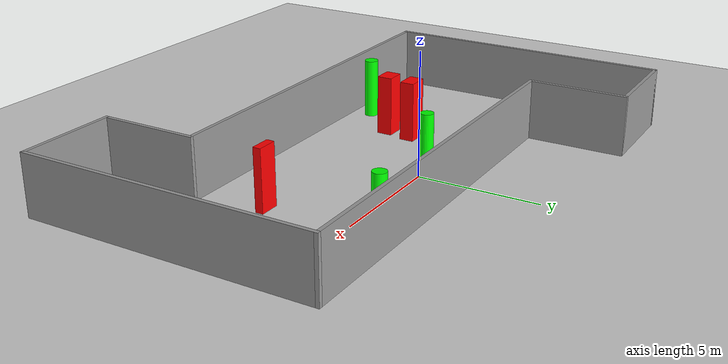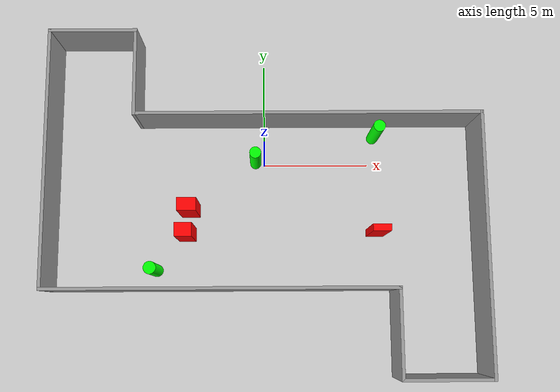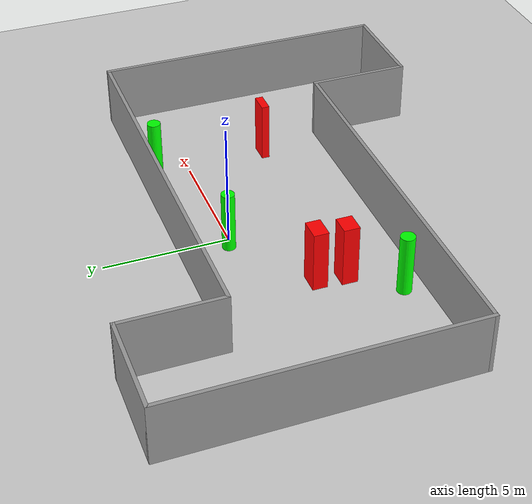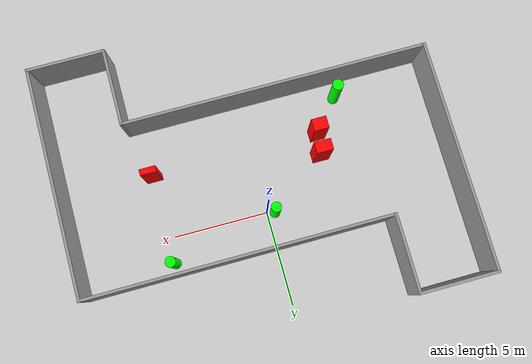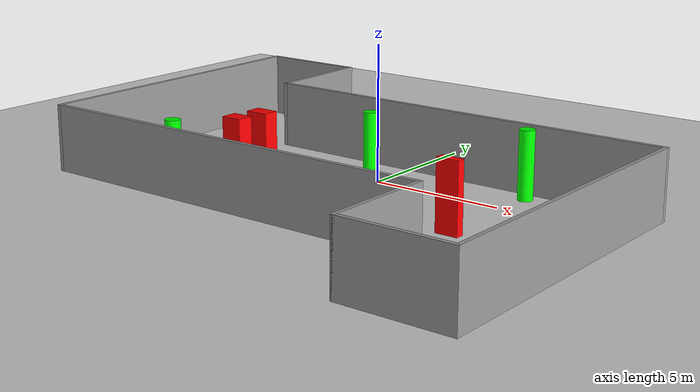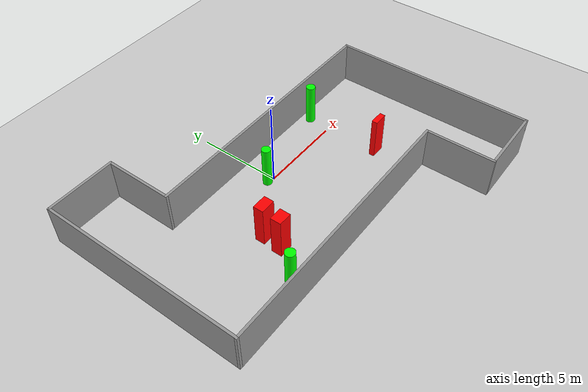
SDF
<sdf version="1.7">
 <world name="default">
  <light name="sun" type="directional">
   <pose>0 0 10 0 -0 0</pose>
   <diffuse>0.8 0.8 0.8 1</diffuse>
   <specular>0.2 0.2 0.2 1</specular>
   <attenuation>
    <range>1000</range>
    <constant>0.9</constant>
    <linear>0.01</linear>
    <quadratic>0.001</quadratic>
   </attenuation>
   <direction>-0.5 0.1 -0.9</direction>
   <spot><inner_angle>0</inner_angle><outer_angle>0</outer_angle><falloff>0</falloff></spot>
  </light>
  <model name="ground_plane">
   <static>1</static>
   <link name="link">
    <collision name="collision">
     <geometry><plane><normal>0 0 1</normal><size>100 100</size></plane></geometry>
     <surface>
      <contact><collide_bitmask>65535</collide_bitmask></contact>
      <friction><ode><mu>100</mu><mu2>50</mu2></ode></friction>
     </surface>
    </collision>
    <visual name="visual">
     <cast_shadows>0</cast_shadows>
     <geometry><plane><normal>0 0 1</normal><size>100 100</size></plane></geometry>
     <material>
      <script><uri>file://media/materials/scripts/gazebo.material</uri><name>Gazebo/Grey</name></script>
     </material>
    </visual>
   </link>
  </model>
  <gravity>0 0 -9.8</gravity>
  <magnetic_field>6e-06 2.3e-05 -4.2e-05</magnetic_field>
  <atmosphere type="adiabatic"/>
  <physics type="ode">
   <max_step_size>0.001</max_step_size>
   <real_time_factor>1</real_time_factor>
   <real_time_update_rate>1000</real_time_update_rate>
  </physics>
  <scene><ambient>0.4 0.4 0.4 1</ambient><background>0.7 0.7 0.7 1</background><shadows>1</shadows></scene>
  <spherical_coordinates>
   <surface_model>EARTH_WGS84</surface_model>
   <latitude_deg>0</latitude_deg>
   <longitude_deg>0</longitude_deg>
   <elevation>0</elevation>
   <heading_deg>0</heading_deg>
  </spherical_coordinates>
  <model name="my_base_walls">
   <link name="Wall_13">
    <collision name="Wall_13_Collision">
     <geometry><box><size>12.15 0.15 2.5</size></box></geometry>
     <pose>0 0 1.25 0 -0 0</pose>
    </collision>
    <visual name="Wall_13_Visual">
     <pose>0 0 1.25 0 -0 0</pose>
     <geometry><box><size>12.15 0.15 2.5</size></box></geometry>
     <material>
      <script><uri>file://media/materials/scripts/gazebo.material</uri><name>Gazebo/Grey</name></script>
      <ambient>1 1 1 1</ambient>
     </material>
     <meta><layer>0</layer></meta>
    </visual>
    <pose>10 -2 0 0 -0 1.5708</pose>
   </link>
   <link name="Wall_15">
    <collision name="Wall_15_Collision">
     <geometry><box><size>16.15 0.15 2.5</size></box></geometry>
     <pose>0 0 1.25 0 -0 0</pose>
    </collision>
    <visual name="Wall_15_Visual">
     <pose>0 0 1.25 0 -0 0</pose>
     <geometry><box><size>16.15 0.15 2.5</size></box></geometry>
     <material>
      <script><uri>file://media/materials/scripts/gazebo.material</uri><name>Gazebo/Grey</name></script>
      <ambient>1 1 1 1</ambient>
     </material>
     <meta><layer>0</layer></meta>
    </visual>
    <pose>2 4 0 0 -0 3.14159</pose>
   </link>
   <link name="Wall_17">
    <collision name="Wall_17_Collision">
     <geometry><box><size>4.15 0.15 2.5</size></box></geometry>
     <pose>0 0 1.25 0 -0 0</pose>
    </collision>
    <visual name="Wall_17_Visual">
     <pose>0 0 1.25 0 -0 0</pose>
     <geometry><box><size>4.15 0.15 2.5</size></box></geometry>
     <material>
      <script><uri>file://media/materials/scripts/gazebo.material</uri><name>Gazebo/Grey</name></script>
      <ambient>1 1 1 1</ambient>
     </material>
     <meta><layer>0</layer></meta>
    </visual>
    <pose>6 -6 0 0 -0 -1.5708</pose>
   </link>
   <link name="Wall_19">
    <collision name="Wall_19_Collision">
     <geometry><box><size>12.15 0.15 2.5</size></box></geometry>
     <pose>0 0 1.25 0 -0 0</pose>
    </collision>
    <visual name="Wall_19_Visual">
     <pose>0 0 1.25 0 -0 0</pose>
     <geometry><box><size>12.15 0.15 2.5</size></box></geometry>
     <material>
      <script><uri>file://media/materials/scripts/gazebo.material</uri><name>Gazebo/Grey</name></script>
      <ambient>1 1 1 1</ambient>
     </material>
     <meta><layer>0</layer></meta>
    </visual>
    <pose>-10 2 0 0 -0 1.5708</pose>
   </link>
   <link name="Wall_21">
    <collision name="Wall_21_Collision">
     <geometry><box><size>4.15 0.15 2.5</size></box></geometry>
     <pose>0 0 1.25 0 -0 0</pose>
    </collision>
    <visual name="Wall_21_Visual">
     <pose>0 0 1.25 0 -0 0</pose>
     <geometry><box><size>4.15 0.15 2.5</size></box></geometry>
     <material>
      <script><uri>file://media/materials/scripts/gazebo.material</uri><name>Gazebo/Grey</name></script>
      <ambient>1 1 1 1</ambient>
     </material>
     <meta><layer>0</layer></meta>
    </visual>
    <pose>-8 8 0 0 -0 0</pose>
   </link>
   <link name="Wall_23">
    <collision name="Wall_23_Collision">
     <geometry><box><size>4.15 0.15 2.5</size></box></geometry>
     <pose>0 0 1.25 0 -0 0</pose>
    </collision>
    <visual name="Wall_23_Visual">
     <pose>0 0 1.25 0 -0 0</pose>
     <geometry><box><size>4.15 0.15 2.5</size></box></geometry>
     <material>
      <script><uri>file://media/materials/scripts/gazebo.material</uri><name>Gazebo/Grey</name></script>
      <ambient>1 1 1 1</ambient>
     </material>
     <meta><layer>0</layer></meta>
    </visual>
    <pose>-6 6 0 0 -0 -1.5708</pose>
   </link>
   <link name="Wall_25">
    <collision name="Wall_25_Collision">
     <geometry><box><size>4.15 0.15 2.5</size></box></geometry>
     <pose>0 0 1.25 0 -0 0</pose>
    </collision>
    <visual name="Wall_25_Visual">
     <pose>0 0 1.25 0 -0 0</pose>
     <geometry><box><size>4.15 0.15 2.5</size></box></geometry>
     <material>
      <script><uri>file://media/materials/scripts/gazebo.material</uri><name>Gazebo/Grey</name></script>
      <ambient>1 1 1 1</ambient>
     </material>
     <meta><layer>0</layer></meta>
    </visual>
    <pose>8 -8 0 0 -0 0</pose>
   </link>
   <link name="Wall_9">
    <collision name="Wall_9_Collision">
     <geometry><box><size>16.15 0.15 2.5</size></box></geometry>
     <pose>0 0 1.25 0 -0 0</pose>
    </collision>
    <visual name="Wall_9_Visual">
     <pose>0 0 1.25 0 -0 0</pose>
     <geometry><box><size>16.15 0.15 2.5</size></box></geometry>
     <material>
      <script><uri>file://media/materials/scripts/gazebo.material</uri><name>Gazebo/Grey</name></script>
      <ambient>1 1 1 1</ambient>
     </material>
     <meta><layer>0</layer></meta>
    </visual>
    <pose>-2 -4 0 0 -0 3.14159</pose>
   </link>
   <static>1</static>
   <pose>-0 -2 0 0 -0 0</pose>
  </model>
  <model name="cylinder1">
   <static>1</static>
   <link name="link">
    <inertial>
     <mass>1</mass>
     <inertia><ixx>0.5</ixx><ixy>0</ixy><ixz>0</ixz><iyy>0.5</iyy><iyz>0</iyz><izz>1</izz></inertia>
    </inertial>
    <collision name="collision">
     <geometry><cylinder><radius>0.2651198157460931</radius><length>2.5</length></cylinder></geometry>
    </collision>
    <visual name="visual">
     <geometry><cylinder><radius>0.2651198157460931</radius><length>2.5</length></cylinder></geometry>
     <material>
      <ambient>0 1 0 1</ambient>
      <diffuse>0 1 0 1</diffuse>
      <specular>0.1 0.1 0.1 1</specular>
      <emissive>0 0 0 0</emissive>
     </material>
    </visual>
   </link>
   <pose>-0.41307951575683255 0.12199379041248104 1.25 0 0 0</pose>
  </model>
  <model name="cylinder2">
   <static>1</static>
   <link name="link">
    <inertial>
     <mass>1</mass>
     <inertia><ixx>0.5</ixx><ixy>0</ixy><ixz>0</ixz><iyy>0.5</iyy><iyz>0</iyz><izz>1</izz></inertia>
    </inertial>
    <collision name="collision">
     <geometry><cylinder><radius>0.2869185096919095</radius><length>2.5</length></cylinder></geometry>
    </collision>
    <visual name="visual">
     <geometry><cylinder><radius>0.2869185096919095</radius><length>2.5</length></cylinder></geometry>
     <material>
      <ambient>0 1 0 1</ambient>
      <diffuse>0 1 0 1</diffuse>
      <specular>0.1 0.1 0.1 1</specular>
      <emissive>0 0 0 0</emissive>
     </material>
    </visual>
   </link>
   <pose>-5.124295054560899 -5.083440301808142 1.25 0 0 0</pose>
  </model>
  <model name="cylinder3">
   <static>1</static>
   <link name="link">
    <inertial>
     <mass>1</mass>
     <inertia><ixx>0.5</ixx><ixy>0</ixy><ixz>0</ixz><iyy>0.5</iyy><iyz>0</iyz><izz>1</izz></inertia>
    </inertial>
    <collision name="collision">
     <geometry><cylinder><radius>0.27364222943636823</radius><length>2.5</length></cylinder></geometry>
    </collision>
    <visual name="visual">
     <geometry><cylinder><radius>0.27364222943636823</radius><length>2.5</length></cylinder></geometry>
     <material>
      <ambient>0 1 0 1</ambient>
      <diffuse>0 1 0 1</diffuse>
      <specular>0.1 0.1 0.1 1</specular>
      <emissive>0 0 0 0</emissive>
     </material>
    </visual>
   </link>
   <pose>5.288500434445298 1.3474550202105142 1.25 0 0 0</pose>
  </model>
  <model name="box1">
   <static>1</static>
   <link name="link">
    <inertial>
     <mass>1</mass>
     <inertia><ixx>0.083</ixx><ixy>0</ixy><ixz>0</ixz><iyy>0.083</iyy><iyz>0</iyz><izz>0.083</izz></inertia>
    </inertial>
    <collision name="collision">
     <geometry><box><size>0.7855290878896877 0.6318118881354609 2.5</size></box></geometry>
    </collision>
    <visual name="visual">
     <geometry><box><size>0.7855290878896877 0.6318118881354609 2.5</size></box></geometry>
     <material>
      <ambient>1 0 0 1</ambient>
      <diffuse>1 0 0 1</diffuse>
      <specular>0.1 0.1 0.1 1</specular>
      <emissive>0 0 0 0</emissive>
     </material>
    </visual>
    <sensor name="my_contact" type="contact">
     <contact><collision>box_collision</collision><topic>__default_topic__</topic></contact>
    </sensor>
   </link>
   <pose>-3.67012125187144 -3.373226990773321 1.25 0 0 0</pose>
  </model>
  <model name="box2">
   <static>1</static>
   <link name="link">
    <inertial>
     <mass>1</mass>
     <inertia><ixx>0.083</ixx><ixy>0</ixy><ixz>0</ixz><iyy>0.083</iyy><iyz>0</iyz><izz>0.083</izz></inertia>
    </inertial>
    <collision name="collision">
     <geometry><box><size>0.874325635914736 0.5938324530080097 2.5</size></box></geometry>
    </collision>
    <visual name="visual">
     <geometry><box><size>0.874325635914736 0.5938324530080097 2.5</size></box></geometry>
     <material>
      <ambient>1 0 0 1</ambient>
      <diffuse>1 0 0 1</diffuse>
      <specular>0.1 0.1 0.1 1</specular>
      <emissive>0 0 0 0</emissive>
     </material>
    </visual>
    <sensor name="my_contact" type="contact">
     <contact><collision>box_collision</collision><topic>__default_topic__</topic></contact>
    </sensor>
   </link>
   <pose>-3.52893971742214 -2.2212254719293334 1.25 0 0 0</pose>
  </model>
  <model name="box3">
   <static>1</static>
   <link name="link">
    <inertial>
     <mass>1</mass>
     <inertia><ixx>0.083</ixx><ixy>0</ixy><ixz>0</ixz><iyy>0.083</iyy><iyz>0</iyz><izz>0.083</izz></inertia>
    </inertial>
    <collision name="collision">
     <geometry><box><size>0.8356539119625699 0.3204572791330466 2.5</size></box></geometry>
    </collision>
    <visual name="visual">
     <geometry><box><size>0.8356539119625699 0.3204572791330466 2.5</size></box></geometry>
     <material>
      <ambient>1 0 0 1</ambient>
      <diffuse>1 0 0 1</diffuse>
      <specular>0.1 0.1 0.1 1</specular>
      <emissive>0 0 0 0</emissive>
     </material>
    </visual>
    <sensor name="my_contact" type="contact">
     <contact><collision>box_collision</collision><topic>__default_topic__</topic></contact>
    </sensor>
   </link>
   <pose>5.282314698212746 -3.324425538284613 1.25 0 0 0</pose>
  </model>
 </world>
</sdf>
